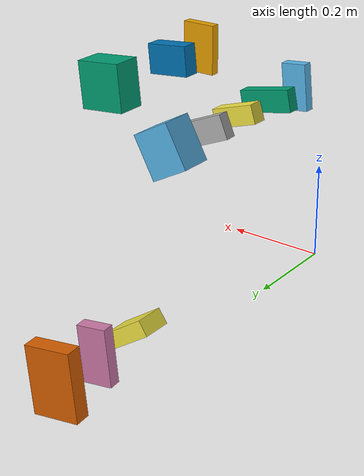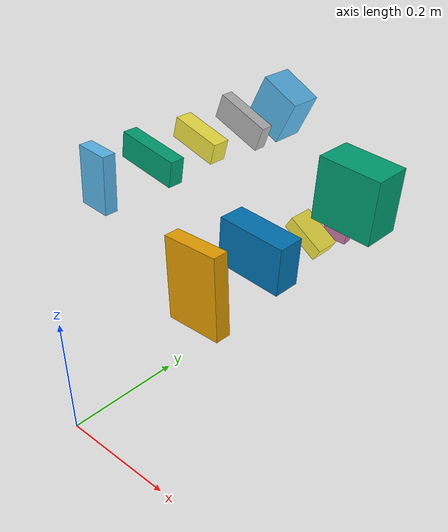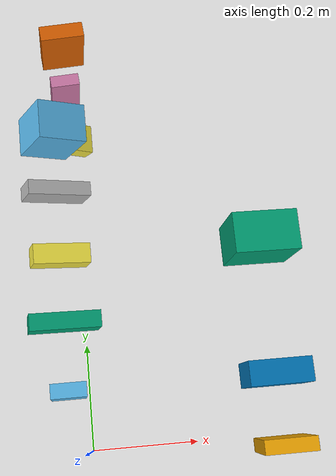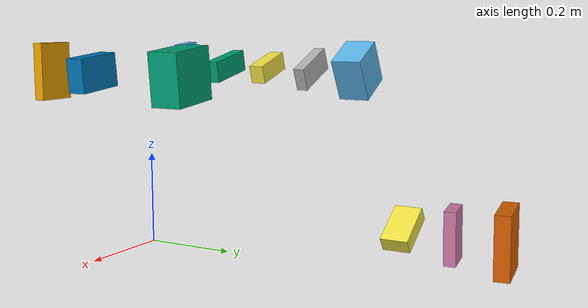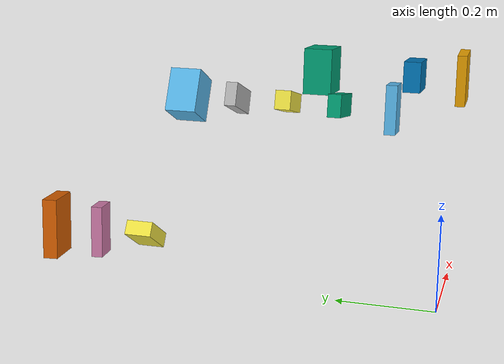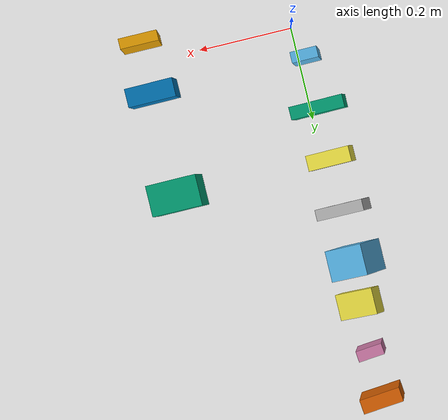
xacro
<?xml version="1.0" ?>
<robot name="medicine_demo"
       xmlns:controller="http://playerstage.sourceforge.net/gazebo/xmlschema/#controller"
       xmlns:interface="http://playerstage.sourceforge.net/gazebo/xmlschema/#interface"
       xmlns:sensor="http://playerstage.sourceforge.net/gazebo/xmlschema/#sensor"
       xmlns:xacro="http://www.ros.org/wiki/xacro">

  <!--
       ROS URDF model of several books.
       Origin and center of mass are at the center of the mesh.

       (C) 2019 fnh, hendrich@informatik.uni-hamburg.de
  -->
  <!-- main body with Collada mesh for both visual and collision -->

  <xacro:include filename="$(find tams_books_world)/urdf/book_cube.xacro" />

  <gazebo>
    <plugin filename="libgazebo_ros_control.so" name="gazebo_ros_control">
      <ns></ns>
      <robotNamespace></robotNamespace>
      <controlPeriod>0.001</controlPeriod>
    </plugin>
 </gazebo>

  <link name="world" />

  <!-- Aronal/Elmex toothpaste travel pack, 2x12ml -->
  <xacro:book_cube
      name="aronal"
      weight="0.040"
      mesh="medicine/box-aronal.dae"
      xsize="0.051"
      ysize="0.021"
      zsize="0.092"
  />

  <!-- ASS-ratiopharm 500mg 30 N2 -->
  <xacro:book_cube
      name="ass_ratiopharm"
      weight="0.040"
      mesh="medicine/box-ass.dae"
      xsize="0.105"
      ysize="0.025"
      zsize="0.043"
  />

  <!-- Cetirizin-ADGC 50 N2 -->
  <xacro:book_cube
      name="cetirizin"
      weight="0.060"
      mesh="medicine/box-cetirizin.dae"
      xsize="0.086"
      ysize="0.030"
      zsize="0.036"
  />

  <!-- Today Cremeseife mild, soap bar -->
  <xacro:book_cube
      name="cremeseife"
      weight="0.150"
      mesh="medicine/box-cremeseife.dae"
      xsize="0.093"
      ysize="0.036"
      zsize="0.064"
  />

  <!-- Doppelherz pack of vitamin-D pills -->
  <xacro:book_cube
      name="doppelherz"
      weight="0.0125"
      mesh="medicine/box-doppelherz.dae"
      xsize="0.085"
      ysize="0.030"
      zsize="0.125"
  />

  <!-- pack of paper handkerchiefs, Kokett brand -->
  <xacro:book_cube
      name="kokett"
      weight="0.050"
      mesh="medicine/box-kokett.dae"
      xsize="0.055"
      ysize="0.023"
      zsize="0.106"
  />

  <!-- Lopedium 10 N1 -->
  <xacro:book_cube
      name="lopedium"
      weight="0.046"
      mesh="medicine/box-lopedium.dae"
      xsize="0.097"
      ysize="0.022"
      zsize="0.045"
  />

  <!-- pack of band-aid, Schlecker AS brand -->
  <xacro:book_cube
      name="pflaster"
      weight="0.200"
      mesh="medicine/box-pflaster.dae"
      xsize="0.074"
      ysize="0.020"
      zsize="0.107"
  />

  <!-- pack of lens-cleaning towels, Bestview brand -->
  <xacro:book_cube
      name="bestview"
      weight="0.056"
      mesh="medicine/box-bestview.dae"
      xsize="0.076"
      ysize="0.060"
      zsize="0.085"
  />

  <!-- pack of Lipton orange tea bags -->
  <xacro:book_cube
      name="lipton"
      weight="0.055"
      mesh="medicine/box-lipton.dae"
      xsize="0.097"
      ysize="0.060"
      zsize="0.097"
  />

  <!-- kitchen cleaning sponge -->
  <xacro:book_cube
      name="sponge"
      weight="0.060"
      mesh="medicine/box-sponge.dae"
      xsize="0.090"
      ysize="0.055"
      zsize="0.030"
  />

  <joint name="world_aronal_joint" type="floating">
     <parent link="world" />
     <child  link="aronal_link" />
     <origin xyz="0 0.1 0.4" rpy="0 0.1 0" />
  </joint>

  <joint name="world_ass_joint" type="floating">
     <parent link="world" />
     <child  link="ass_ratiopharm_link" />
     <origin xyz="0 0.2 0.4" rpy="0 0.2 0" />
  </joint>

  <joint name="world_cetirizin_joint" type="floating">
     <parent link="world" />
     <child  link="cetirizin_link" />
     <origin xyz="0 0.3 0.4" rpy="0 0.3 0" />
  </joint>

  <joint name="world_lopedium_joint" type="floating">
     <parent link="world" />
     <child  link="lopedium_link" />
     <origin xyz="0 0.4 0.4" rpy="0 0.4 0" />
  </joint>

  <joint name="world_bestview_joint" type="floating">
     <parent link="world" />
     <child  link="bestview_link" />
     <origin xyz="0 0.5 0.4" rpy="0 0.5 0" />
  </joint>

  <joint name="world_sponge_joint" type="floating">
     <parent link="world" />
     <child  link="sponge_link" />
     <origin xyz="0 0.6 0.1" rpy="0 0.6 0" />
  </joint>

  <joint name="world_kokett_joint" type="floating">
     <parent link="world" />
     <child  link="kokett_link" />
     <origin xyz="0 0.7 0.1" rpy="0 0.1 0.1" />
  </joint>

  <joint name="world_doppelherz_joint" type="floating">
     <parent link="world" />
     <child  link="doppelherz_link" />
     <origin xyz="0 0.8 0.1" rpy="0 0.1 0.1" />
  </joint>

  <joint name="world_pflaster_joint" type="floating">
     <parent link="world" />
     <child  link="pflaster_link" />
     <origin xyz="0.3 0 0.4" rpy="0.0 0 0" />
  </joint>

  <joint name="world_cremeseife_joint" type="floating">
     <parent link="world" />
     <child  link="cremeseife_link" />
     <origin xyz="0.3 0.1 0.4" rpy="0 0.1 0" />
  </joint>

  <joint name="world_lipton_joint" type="floating">
     <parent link="world" />
     <child  link="lipton_link" />
     <origin xyz="0.3 0.3 0.4" rpy="0 0.1 0" />
  </joint>

</robot>

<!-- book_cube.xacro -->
<robot name="book_cube"
       xmlns:controller="http://playerstage.sourceforge.net/gazebo/xmlschema/#controller"
       xmlns:interface="http://playerstage.sourceforge.net/gazebo/xmlschema/#interface"
       xmlns:sensor="http://playerstage.sourceforge.net/gazebo/xmlschema/#sensor"
       xmlns:xacro="http://www.ros.org/wiki/xacro">
  <!--
       basic ROS xacro macro for a "book": a cube with textures.
       Origin and center of mass are at the center of the mesh.

       (C) 2019 fnh, hendrich@informatik.uni-hamburg.de
  -->

<xacro:macro name="book_cube" params="name weight mesh xsize ysize zsize">

  <!-- main body with Collada mesh for both visual and collision -->
  <link name="${name}_link">
    <inertial>
      <mass value="${weight}"/>
      <origin rpy="0 0 0" xyz="0 0 0"/>
      <inertia ixx="${weight/12*(ysize*ysize+zsize*zsize)}"
               iyy="${weight/12*(xsize*xsize+zsize*zsize)}"
               izz="${weight/12*(xsize*xsize+ysize*ysize)}"
               ixy="0" ixz="0" iyz="0" />
    </inertial>
    <collision>
      <origin rpy="0 0 0" xyz="0 0 0"/>
      <geometry>
        <box size="${xsize} ${ysize} ${zsize}" rpy="0 0 0" />
      </geometry>
    </collision>
    <visual>
      <origin rpy="0 0 0" xyz="0 0 0"/>
      <geometry>
        <mesh filename="package://tams_books_world/meshes/${mesh}" scale="${0.5*xsize} ${0.5*ysize} ${0.5*zsize}" />
      </geometry>
    </visual>
  </link>
  <gazebo reference="${name}_link">
    <!-- material/texture definition for Gazebo -->
    <turnGravityOff>false</turnGravityOff>
    <selfCollide>true</selfCollide>
    <mu1>1</mu1>
    <mu2>1</mu2>
    <kp>10000000.0</kp>
    <kd>10.0</kd>
  </gazebo>
</xacro:macro>

</robot>
